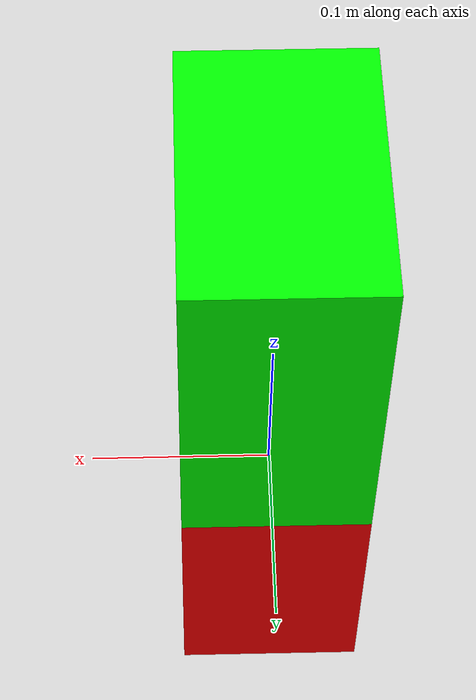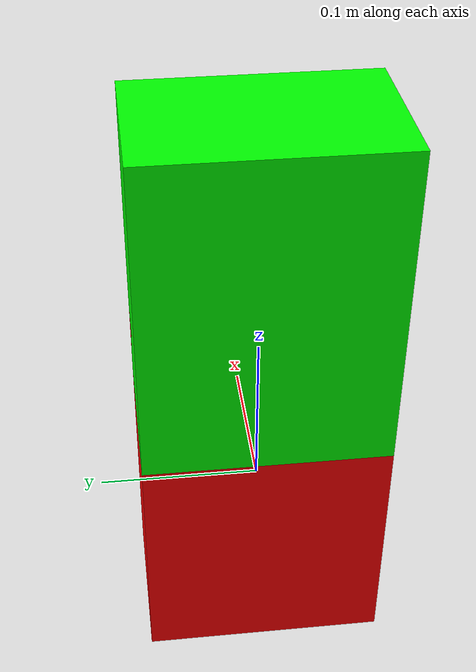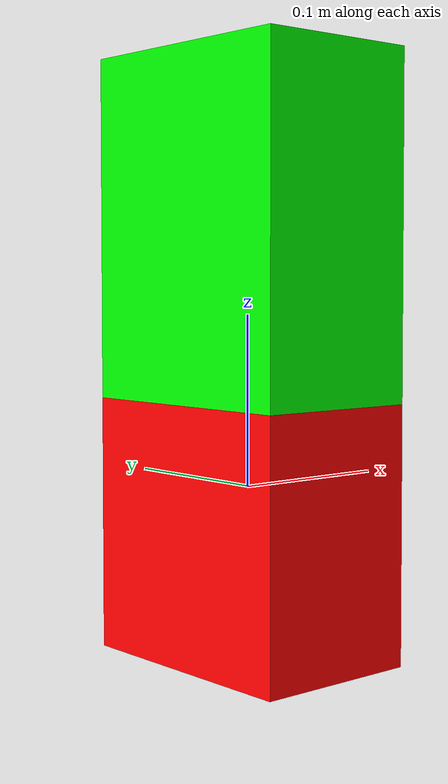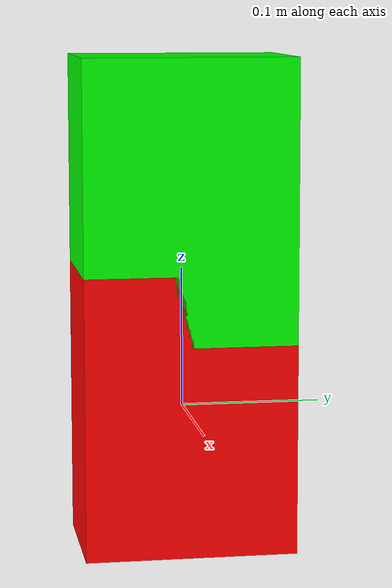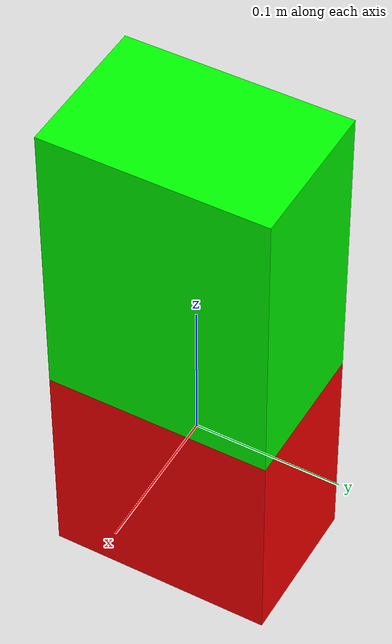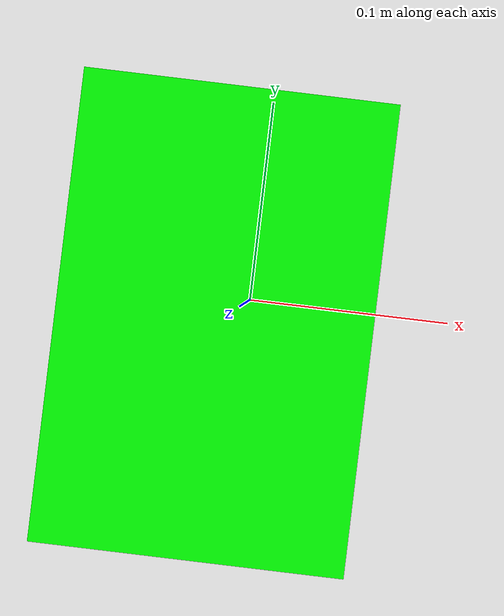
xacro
<?xml version="1.0"?>

<robot name="basic_link" xmlns:xacro="http://ros.org/wiki/xacro" >

    <xacro:property name="package_name" value="tm_empl1_description" />
    <xacro:include filename="$(find ${package_name})/urdf/basic_gz_position.xacro" />

    <link name="world">
    </link>
    <joint name="world_to_baselink" type="fixed">
        <parent link="world" />
        <child link="base_link" />
        <origin xyz="0 0 0" rpy="0 0 0"/>
    </joint>

    <link name="base_link">
        <visual>
            <origin xyz="0.0 0.0 0.0" rpy="0 0 0" />
            <geometry>
                <box size="0.1 0.15 0.2" />
            </geometry>
            <material name="red">
                <color rgba="1.0 0 0 1" />
            </material>
        </visual>
        <collision>
            <origin xyz="0.0 0.0 0.0" rpy="0 0 0" />
            <geometry>
                <box size="0.1 0.15 0.2" />
            </geometry>
        </collision>
        <inertial>
            <origin xyz="0.0 0.0 0.0" rpy="0 0 0" />
            <mass value="1" />
            <inertia ixx="1.0" ixy="0.0" ixz="0.0" iyy="1.0" iyz="0.0" izz="1.0" />
        </inertial>
    </link>

    <link name="link_1">

        <visual>
            <origin xyz="0.0 0.0 0.0" rpy="0 0 0" />
            <geometry>
                <box size="0.1 0.15 0.2" />
            </geometry>
            <material name="green">
                <color rgba="0.0 1.0 0.0 1.0" />
            </material>
        </visual>

        <collision>
            <origin xyz="0.0 0.0 0.0" rpy="0 0 0" />
                <geometry>
                    <box size="0.1 0.15 0.2" />
                </geometry>
        </collision>

        <inertial>
            <origin xyz="0 0 0" rpy="0 0 0" />
            <mass value="1" />
            <inertia ixx="1.0" ixy="0.0" ixz="0.0" iyy="1.0" iyz="0.0" izz="1.0" />
        </inertial>

    </link>

    <joint name="base_link_to_link_1_joint" type="revolute">
        <parent link="base_link" />
        <child link="link_1" />
        <axis xyz="1 0 0" />
        <limit lower="-3.14159" velocity="1" effort="1000.0" />
        <origin xyz="0 0 0.15" rpy="0 0 0" />
    </joint>

</robot>
